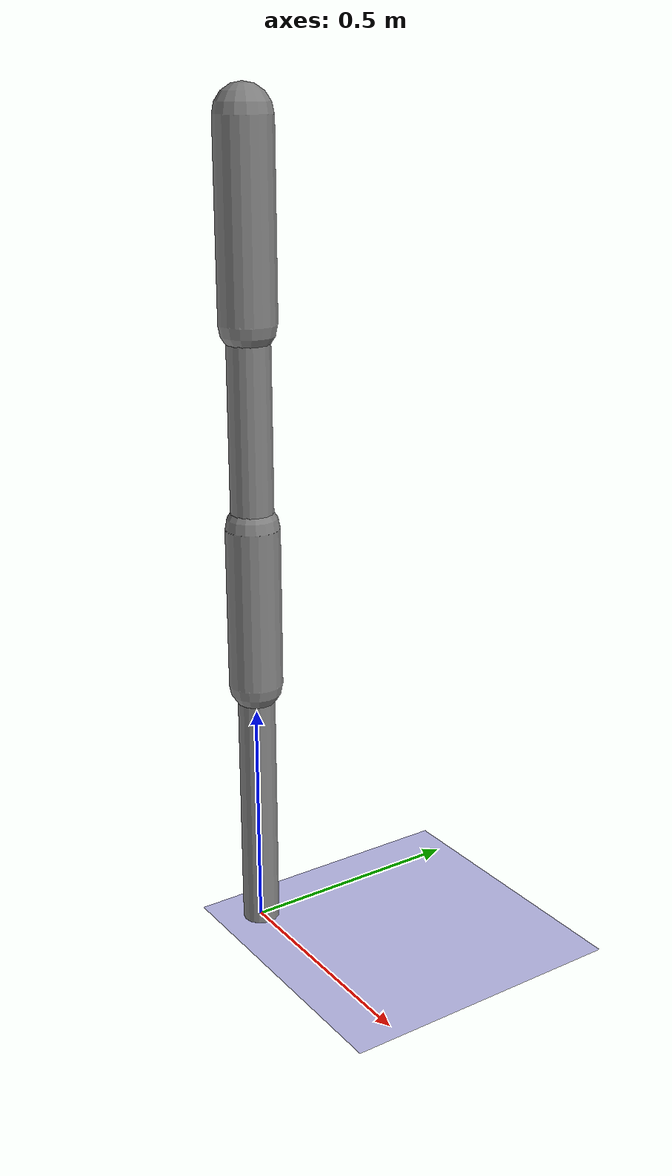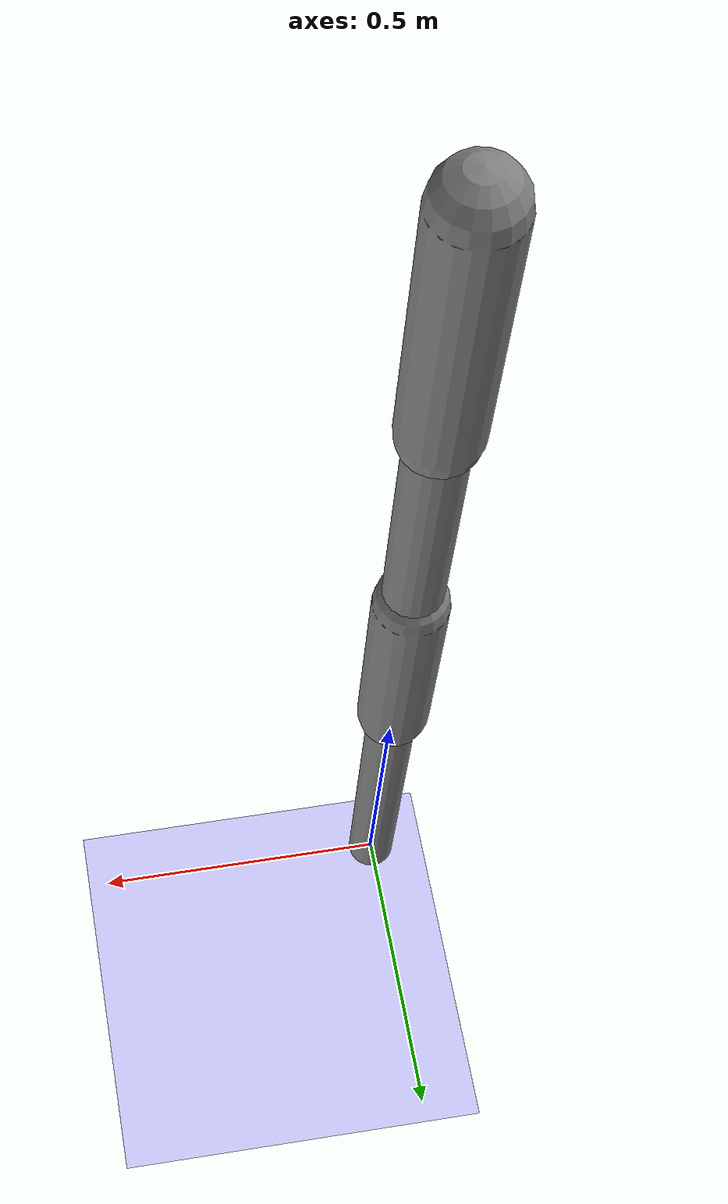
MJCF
<?xml version='1.0' encoding='UTF-8'?>
<mujoco model="robot_model">
  <worldbody>
    <light name="light" pos="0 -3 10" dir="0 0.5 -1" diffuse=".8 .8 .8" specular="0.1 0.1 0.1"/>
    <geom name="floor" type="plane" size="10.0 10.0 0.1" pos="0 0 0" rgba="0.8 0.8 1 1" contype="2" conaffinity="1"/>
    <body name="limb0" pos="0 0 0">
      <geom type="capsule" fromto="0 0 0 0 0 0.5667702485451566" size="0.04" density="499.2450566681597" contype="1" conaffinity="2"/>
      <site type="sphere" size="0.01" name="limb0_site0" pos="0 0 0.5667702485451566"/>
      <site type="sphere" size="0.01" name="limb0_site1" pos="0 0 0.4765274366472671"/>
      <site type="sphere" size="0.01" name="limb0_site2" pos="0 0 0.40736074516765"/>
      <freejoint name="limb0_root"/>
      <body name="limb1" pos="0 0 0.5667702485451566">
        <geom type="capsule" fromto="0 0 0 0 0 0.34784341191026547" size="0.05780096325172323" density="1003.386613734127" contype="1" conaffinity="2"/>
        <site type="sphere" size="0.01" name="limb1_site0" pos="0 0 0.33235869606856727"/>
        <site type="sphere" size="0.01" name="limb1_site1" pos="0 0 0.06927704373718688"/>
        <body name="limb2" pos="0 0 0.33235869606856727">
          <geom type="capsule" fromto="0 0 0 0 0 0.5" size="0.045329815490319995" density="1017.2531489540214" contype="1" conaffinity="2"/>
          <site type="sphere" size="0.01" name="limb2_site0" pos="0 0 0.28431863432086774"/>
          <site type="sphere" size="0.01" name="limb2_site1" pos="0 0 0.4365154153176309"/>
          <site type="sphere" size="0.01" name="limb2_site2" pos="0 0 0.1982484344008178"/>
          <body name="limb3" pos="0 0 0.28431863432086774">
            <geom type="capsule" fromto="0 0 0 0 0 0.20578184635435443" size="0.0264772811132037" density="921.4734911558404" contype="1" conaffinity="2"/>
            <joint name="joint_limb2_limb3_0" type="hinge" axis="0 1 0" range="-51.59203017742993 51.59203017742993" damping="5.0"/>
          </body>
          <body name="limb4" pos="0 0 0.4365154153176309">
            <geom type="capsule" fromto="0 0 0 0 0 0.3972618679804144" size="0.06" density="1004.5745180747006" contype="1" conaffinity="2"/>
            <joint name="joint_limb2_limb4_0" type="hinge" axis="0 1 0" range="-45.52326095490938 45.52326095490938" damping="5.0"/>
          </body>
          <body name="limb5" pos="0 0 0.1982484344008178">
            <geom type="capsule" fromto="0 0 0 0 0 0.2915545876731404" size="0.041653011905912966" density="980.8720051175214" contype="1" conaffinity="2"/>
            <joint name="joint_limb2_limb5_0" type="hinge" axis="0 1 0" range="-107.14717313770412 107.14717313770412" damping="5.0"/>
          </body>
          <joint name="joint_limb1_limb2_0" type="hinge" axis="0 1 0" range="-57.66449740169123 57.66449740169123" damping="5.0"/>
        </body>
        <body name="limb6" pos="0 0 0.06927704373718688">
          <geom type="capsule" fromto="0 0 0 0 0 0.44552404738132806" size="0.039556271122214166" density="1076.0934479971258" contype="1" conaffinity="2"/>
          <joint name="joint_limb1_limb6_0" type="hinge" axis="0 0 1" range="-20.0 20.0" damping="5.0"/>
        </body>
        <joint name="joint_limb0_limb1_0" type="hinge" axis="0 1 0" range="-93.48133100342702 93.48133100342702" damping="5.0"/>
      </body>
      <body name="limb7" pos="0 0 0.4765274366472671">
        <geom type="capsule" fromto="0 0 0 0 0 0.24289503574557547" size="0.03128601722470996" density="865.5400845016025" contype="1" conaffinity="2"/>
        <joint name="joint_limb0_limb7_0" type="hinge" axis="0 1 0" range="-63.22844417036358 63.22844417036358" damping="5.0"/>
      </body>
      <body name="limb8" pos="0 0 0.40736074516765">
        <geom type="capsule" fromto="0 0 0 0 0 0.30452645221964403" size="0.025785880078164375" density="1018.0304064374076" contype="1" conaffinity="2"/>
        <joint name="joint_limb0_limb8_0" type="hinge" axis="0 0 1" range="-35.12701677795169 35.12701677795169" damping="5.0"/>
      </body>
    </body>
  </worldbody>
  <actuator>
    <position name="position_actuator_joint_limb0_limb1_0" joint="joint_limb0_limb1_0" gear="2.0" inheritrange="1" forcerange="-22.374671965647444 22.374671965647444" forcelimited="true" kp="100.0"/>
    <position name="position_actuator_joint_limb1_limb2_0" joint="joint_limb1_limb2_0" gear="1.6660657884047363" inheritrange="1" forcerange="-18.401183504925072 18.401183504925072" forcelimited="true" kp="100.0"/>
    <position name="position_actuator_joint_limb2_limb3_0" joint="joint_limb2_limb3_0" gear="1.8009346564222402" inheritrange="1" forcerange="-2.446355024710029 2.446355024710029" forcelimited="true" kp="100.0"/>
    <position name="position_actuator_joint_limb2_limb4_0" joint="joint_limb2_limb4_0" gear="1.6805690211276594" inheritrange="1" forcerange="-27.111982294544504 27.111982294544504" forcelimited="true" kp="100.0"/>
    <position name="position_actuator_joint_limb2_limb5_0" joint="joint_limb2_limb5_0" gear="0.7060054095369748" inheritrange="1" forcerange="-9.27832460712748 9.27832460712748" forcelimited="true" kp="100.0"/>
    <position name="position_actuator_joint_limb1_limb6_0" joint="joint_limb1_limb6_0" gear="1.7866470493797637" inheritrange="1" forcerange="-13.178366538205218 13.178366538205218" forcelimited="true" kp="100.0"/>
    <position name="position_actuator_joint_limb0_limb7_0" joint="joint_limb0_limb7_0" gear="1.068427433655958" inheritrange="1" forcerange="-3.7875411411789712 3.7875411411789712" forcelimited="true" kp="100.0"/>
    <position name="position_actuator_joint_limb0_limb8_0" joint="joint_limb0_limb8_0" gear="0.9619473016810458" inheritrange="1" forcerange="-3.60351127040225 3.60351127040225" forcelimited="true" kp="100.0"/>
  </actuator>
</mujoco>
